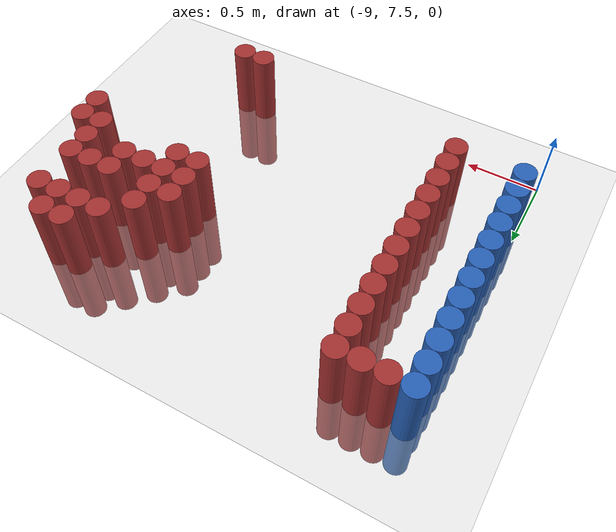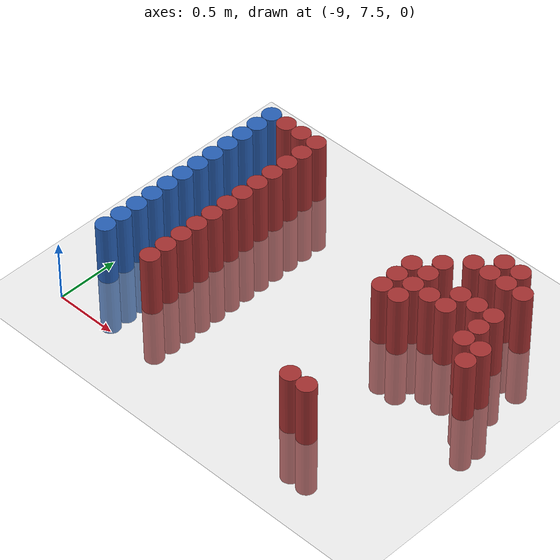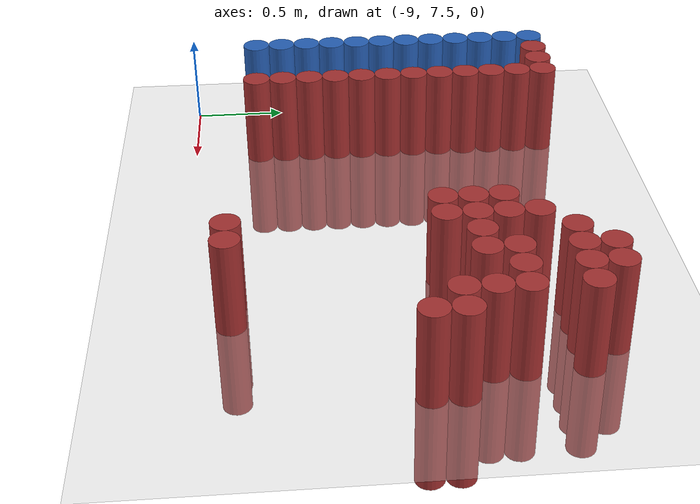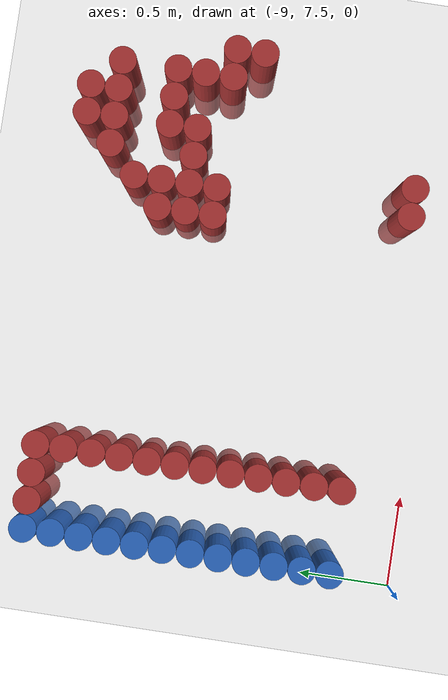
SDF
<sdf version="1.6">
 <world name="default">
  <model name="ground_plane">
   <static>1</static>
   <link name="link">
    <collision name="collision">
     <geometry><plane><normal>0 0 1</normal><size>100 100</size></plane></geometry>
     <surface><friction><ode><mu>100</mu><mu2>50</mu2></ode></friction></surface>
    </collision>
    <visual name="visual">
     <cast_shadows>0</cast_shadows>
     <geometry><plane><normal>0 0 1</normal><size>100 100</size></plane></geometry>
     <material>
      <script><uri>file://media/materials/scripts/gazebo.material</uri><name>Gazebo/Grey</name></script>
     </material>
    </visual>
   </link>
  </model>
  <model name="unit_cylinder_143">
   <static>1</static>
   <pose>-8.925000 7.875000 0.000000 0.000000 0.000000 0.000000</pose>
   <link name="link">
    <inertial>
     <mass>1</mass>
     <inertia><ixx>0.145833</ixx><ixy>0</ixy><ixz>0</ixz><iyy>0.145833</iyy><iyz>0</iyz><izz>0.125</izz></inertia>
    </inertial>
    <collision name="collision">
     <geometry><cylinder><radius>0.075000</radius><length>1</length></cylinder></geometry>
    </collision>
    <visual name="visual">
     <geometry><cylinder><radius>0.075000</radius><length>1</length></cylinder></geometry>
     <material>
      <ambient>0.152000 0.379000 0.720000 1</ambient>
      <diffuse>0.152000 0.379000 0.720000 1</diffuse>
     </material>
     <material>
      <script><name>Gazebo/Grey</name><uri>file://media/materials/scripts/gazebo.material</uri></script>
     </material>
    </visual>
   </link>
  </model>
  <model name="unit_cylinder_144">
   <static>1</static>
   <pose>-8.925000 8.025000 0.000000 0.000000 0.000000 0.000000</pose>
   <link name="link">
    <inertial>
     <mass>1</mass>
     <inertia><ixx>0.145833</ixx><ixy>0</ixy><ixz>0</ixz><iyy>0.145833</iyy><iyz>0</iyz><izz>0.125</izz></inertia>
    </inertial>
    <collision name="collision">
     <geometry><cylinder><radius>0.075000</radius><length>1</length></cylinder></geometry>
    </collision>
    <visual name="visual">
     <geometry><cylinder><radius>0.075000</radius><length>1</length></cylinder></geometry>
     <material>
      <ambient>0.152000 0.379000 0.720000 1</ambient>
      <diffuse>0.152000 0.379000 0.720000 1</diffuse>
     </material>
     <material>
      <script><name>Gazebo/Grey</name><uri>file://media/materials/scripts/gazebo.material</uri></script>
     </material>
    </visual>
   </link>
  </model>
  <model name="unit_cylinder_145">
   <static>1</static>
   <pose>-8.925000 8.175000 0.000000 0.000000 0.000000 0.000000</pose>
   <link name="link">
    <inertial>
     <mass>1</mass>
     <inertia><ixx>0.145833</ixx><ixy>0</ixy><ixz>0</ixz><iyy>0.145833</iyy><iyz>0</iyz><izz>0.125</izz></inertia>
    </inertial>
    <collision name="collision">
     <geometry><cylinder><radius>0.075000</radius><length>1</length></cylinder></geometry>
    </collision>
    <visual name="visual">
     <geometry><cylinder><radius>0.075000</radius><length>1</length></cylinder></geometry>
     <material>
      <ambient>0.152000 0.379000 0.720000 1</ambient>
      <diffuse>0.152000 0.379000 0.720000 1</diffuse>
     </material>
     <material>
      <script><name>Gazebo/Grey</name><uri>file://media/materials/scripts/gazebo.material</uri></script>
     </material>
    </visual>
   </link>
  </model>
  <model name="unit_cylinder_146">
   <static>1</static>
   <pose>-8.925000 8.325000 0.000000 0.000000 0.000000 0.000000</pose>
   <link name="link">
    <inertial>
     <mass>1</mass>
     <inertia><ixx>0.145833</ixx><ixy>0</ixy><ixz>0</ixz><iyy>0.145833</iyy><iyz>0</iyz><izz>0.125</izz></inertia>
    </inertial>
    <collision name="collision">
     <geometry><cylinder><radius>0.075000</radius><length>1</length></cylinder></geometry>
    </collision>
    <visual name="visual">
     <geometry><cylinder><radius>0.075000</radius><length>1</length></cylinder></geometry>
     <material>
      <ambient>0.152000 0.379000 0.720000 1</ambient>
      <diffuse>0.152000 0.379000 0.720000 1</diffuse>
     </material>
     <material>
      <script><name>Gazebo/Grey</name><uri>file://media/materials/scripts/gazebo.material</uri></script>
     </material>
    </visual>
   </link>
  </model>
  <model name="unit_cylinder_147">
   <static>1</static>
   <pose>-8.925000 8.475000 0.000000 0.000000 0.000000 0.000000</pose>
   <link name="link">
    <inertial>
     <mass>1</mass>
     <inertia><ixx>0.145833</ixx><ixy>0</ixy><ixz>0</ixz><iyy>0.145833</iyy><iyz>0</iyz><izz>0.125</izz></inertia>
    </inertial>
    <collision name="collision">
     <geometry><cylinder><radius>0.075000</radius><length>1</length></cylinder></geometry>
    </collision>
    <visual name="visual">
     <geometry><cylinder><radius>0.075000</radius><length>1</length></cylinder></geometry>
     <material>
      <ambient>0.152000 0.379000 0.720000 1</ambient>
      <diffuse>0.152000 0.379000 0.720000 1</diffuse>
     </material>
     <material>
      <script><name>Gazebo/Grey</name><uri>file://media/materials/scripts/gazebo.material</uri></script>
     </material>
    </visual>
   </link>
  </model>
  <model name="unit_cylinder_148">
   <static>1</static>
   <pose>-8.925000 8.625000 0.000000 0.000000 0.000000 0.000000</pose>
   <link name="link">
    <inertial>
     <mass>1</mass>
     <inertia><ixx>0.145833</ixx><ixy>0</ixy><ixz>0</ixz><iyy>0.145833</iyy><iyz>0</iyz><izz>0.125</izz></inertia>
    </inertial>
    <collision name="collision">
     <geometry><cylinder><radius>0.075000</radius><length>1</length></cylinder></geometry>
    </collision>
    <visual name="visual">
     <geometry><cylinder><radius>0.075000</radius><length>1</length></cylinder></geometry>
     <material>
      <ambient>0.152000 0.379000 0.720000 1</ambient>
      <diffuse>0.152000 0.379000 0.720000 1</diffuse>
     </material>
     <material>
      <script><name>Gazebo/Grey</name><uri>file://media/materials/scripts/gazebo.material</uri></script>
     </material>
    </visual>
   </link>
  </model>
  <model name="unit_cylinder_149">
   <static>1</static>
   <pose>-8.925000 8.775000 0.000000 0.000000 0.000000 0.000000</pose>
   <link name="link">
    <inertial>
     <mass>1</mass>
     <inertia><ixx>0.145833</ixx><ixy>0</ixy><ixz>0</ixz><iyy>0.145833</iyy><iyz>0</iyz><izz>0.125</izz></inertia>
    </inertial>
    <collision name="collision">
     <geometry><cylinder><radius>0.075000</radius><length>1</length></cylinder></geometry>
    </collision>
    <visual name="visual">
     <geometry><cylinder><radius>0.075000</radius><length>1</length></cylinder></geometry>
     <material>
      <ambient>0.152000 0.379000 0.720000 1</ambient>
      <diffuse>0.152000 0.379000 0.720000 1</diffuse>
     </material>
     <material>
      <script><name>Gazebo/Grey</name><uri>file://media/materials/scripts/gazebo.material</uri></script>
     </material>
    </visual>
   </link>
  </model>
  <model name="unit_cylinder_150">
   <static>1</static>
   <pose>-8.925000 8.925000 0.000000 0.000000 0.000000 0.000000</pose>
   <link name="link">
    <inertial>
     <mass>1</mass>
     <inertia><ixx>0.145833</ixx><ixy>0</ixy><ixz>0</ixz><iyy>0.145833</iyy><iyz>0</iyz><izz>0.125</izz></inertia>
    </inertial>
    <collision name="collision">
     <geometry><cylinder><radius>0.075000</radius><length>1</length></cylinder></geometry>
    </collision>
    <visual name="visual">
     <geometry><cylinder><radius>0.075000</radius><length>1</length></cylinder></geometry>
     <material>
      <ambient>0.152000 0.379000 0.720000 1</ambient>
      <diffuse>0.152000 0.379000 0.720000 1</diffuse>
     </material>
     <material>
      <script><name>Gazebo/Grey</name><uri>file://media/materials/scripts/gazebo.material</uri></script>
     </material>
    </visual>
   </link>
  </model>
  <model name="unit_cylinder_151">
   <static>1</static>
   <pose>-8.925000 9.075000 0.000000 0.000000 0.000000 0.000000</pose>
   <link name="link">
    <inertial>
     <mass>1</mass>
     <inertia><ixx>0.145833</ixx><ixy>0</ixy><ixz>0</ixz><iyy>0.145833</iyy><iyz>0</iyz><izz>0.125</izz></inertia>
    </inertial>
    <collision name="collision">
     <geometry><cylinder><radius>0.075000</radius><length>1</length></cylinder></geometry>
    </collision>
    <visual name="visual">
     <geometry><cylinder><radius>0.075000</radius><length>1</length></cylinder></geometry>
     <material>
      <ambient>0.152000 0.379000 0.720000 1</ambient>
      <diffuse>0.152000 0.379000 0.720000 1</diffuse>
     </material>
     <material>
      <script><name>Gazebo/Grey</name><uri>file://media/materials/scripts/gazebo.material</uri></script>
     </material>
    </visual>
   </link>
  </model>
  <model name="unit_cylinder_152">
   <static>1</static>
   <pose>-8.925000 9.225000 0.000000 0.000000 0.000000 0.000000</pose>
   <link name="link">
    <inertial>
     <mass>1</mass>
     <inertia><ixx>0.145833</ixx><ixy>0</ixy><ixz>0</ixz><iyy>0.145833</iyy><iyz>0</iyz><izz>0.125</izz></inertia>
    </inertial>
    <collision name="collision">
     <geometry><cylinder><radius>0.075000</radius><length>1</length></cylinder></geometry>
    </collision>
    <visual name="visual">
     <geometry><cylinder><radius>0.075000</radius><length>1</length></cylinder></geometry>
     <material>
      <ambient>0.152000 0.379000 0.720000 1</ambient>
      <diffuse>0.152000 0.379000 0.720000 1</diffuse>
     </material>
     <material>
      <script><name>Gazebo/Grey</name><uri>file://media/materials/scripts/gazebo.material</uri></script>
     </material>
    </visual>
   </link>
  </model>
  <model name="unit_cylinder_153">
   <static>1</static>
   <pose>-8.925000 9.375000 0.000000 0.000000 0.000000 0.000000</pose>
   <link name="link">
    <inertial>
     <mass>1</mass>
     <inertia><ixx>0.145833</ixx><ixy>0</ixy><ixz>0</ixz><iyy>0.145833</iyy><iyz>0</iyz><izz>0.125</izz></inertia>
    </inertial>
    <collision name="collision">
     <geometry><cylinder><radius>0.075000</radius><length>1</length></cylinder></geometry>
    </collision>
    <visual name="visual">
     <geometry><cylinder><radius>0.075000</radius><length>1</length></cylinder></geometry>
     <material>
      <ambient>0.152000 0.379000 0.720000 1</ambient>
      <diffuse>0.152000 0.379000 0.720000 1</diffuse>
     </material>
     <material>
      <script><name>Gazebo/Grey</name><uri>file://media/materials/scripts/gazebo.material</uri></script>
     </material>
    </visual>
   </link>
  </model>
  <model name="unit_cylinder_154">
   <static>1</static>
   <pose>-8.925000 9.525000 0.000000 0.000000 0.000000 0.000000</pose>
   <link name="link">
    <inertial>
     <mass>1</mass>
     <inertia><ixx>0.145833</ixx><ixy>0</ixy><ixz>0</ixz><iyy>0.145833</iyy><iyz>0</iyz><izz>0.125</izz></inertia>
    </inertial>
    <collision name="collision">
     <geometry><cylinder><radius>0.075000</radius><length>1</length></cylinder></geometry>
    </collision>
    <visual name="visual">
     <geometry><cylinder><radius>0.075000</radius><length>1</length></cylinder></geometry>
     <material>
      <ambient>0.152000 0.379000 0.720000 1</ambient>
      <diffuse>0.152000 0.379000 0.720000 1</diffuse>
     </material>
     <material>
      <script><name>Gazebo/Grey</name><uri>file://media/materials/scripts/gazebo.material</uri></script>
     </material>
    </visual>
   </link>
  </model>
  <model name="unit_cylinder_156">
   <static>1</static>
   <pose>-8.775000 9.525000 0.000000 0.000000 0.000000 0.000000</pose>
   <link name="link">
    <inertial>
     <mass>1</mass>
     <inertia><ixx>0.145833</ixx><ixy>0</ixy><ixz>0</ixz><iyy>0.145833</iyy><iyz>0</iyz><izz>0.125</izz></inertia>
    </inertial>
    <collision name="collision">
     <geometry><cylinder><radius>0.075000</radius><length>1</length></cylinder></geometry>
    </collision>
    <visual name="visual">
     <geometry><cylinder><radius>0.075000</radius><length>1</length></cylinder></geometry>
     <material>
      <ambient>0.648000 0.192000 0.192000 1</ambient>
      <diffuse>0.648000 0.192000 0.192000 1</diffuse>
     </material>
     <material>
      <script><name>Gazebo/Grey</name><uri>file://media/materials/scripts/gazebo.material</uri></script>
     </material>
    </visual>
   </link>
  </model>
  <model name="unit_cylinder_158">
   <static>1</static>
   <pose>-8.625000 9.525000 0.000000 0.000000 0.000000 0.000000</pose>
   <link name="link">
    <inertial>
     <mass>1</mass>
     <inertia><ixx>0.145833</ixx><ixy>0</ixy><ixz>0</ixz><iyy>0.145833</iyy><iyz>0</iyz><izz>0.125</izz></inertia>
    </inertial>
    <collision name="collision">
     <geometry><cylinder><radius>0.075000</radius><length>1</length></cylinder></geometry>
    </collision>
    <visual name="visual">
     <geometry><cylinder><radius>0.075000</radius><length>1</length></cylinder></geometry>
     <material>
      <ambient>0.648000 0.192000 0.192000 1</ambient>
      <diffuse>0.648000 0.192000 0.192000 1</diffuse>
     </material>
     <material>
      <script><name>Gazebo/Grey</name><uri>file://media/materials/scripts/gazebo.material</uri></script>
     </material>
    </visual>
   </link>
  </model>
  <model name="unit_cylinder_163">
   <static>1</static>
   <pose>-8.475000 7.875000 0.000000 0.000000 0.000000 0.000000</pose>
   <link name="link">
    <inertial>
     <mass>1</mass>
     <inertia><ixx>0.145833</ixx><ixy>0</ixy><ixz>0</ixz><iyy>0.145833</iyy><iyz>0</iyz><izz>0.125</izz></inertia>
    </inertial>
    <collision name="collision">
     <geometry><cylinder><radius>0.075000</radius><length>1</length></cylinder></geometry>
    </collision>
    <visual name="visual">
     <geometry><cylinder><radius>0.075000</radius><length>1</length></cylinder></geometry>
     <material>
      <ambient>0.648000 0.192000 0.192000 1</ambient>
      <diffuse>0.648000 0.192000 0.192000 1</diffuse>
     </material>
     <material>
      <script><name>Gazebo/Grey</name><uri>file://media/materials/scripts/gazebo.material</uri></script>
     </material>
    </visual>
   </link>
  </model>
  <model name="unit_cylinder_164">
   <static>1</static>
   <pose>-8.475000 8.025000 0.000000 0.000000 0.000000 0.000000</pose>
   <link name="link">
    <inertial>
     <mass>1</mass>
     <inertia><ixx>0.145833</ixx><ixy>0</ixy><ixz>0</ixz><iyy>0.145833</iyy><iyz>0</iyz><izz>0.125</izz></inertia>
    </inertial>
    <collision name="collision">
     <geometry><cylinder><radius>0.075000</radius><length>1</length></cylinder></geometry>
    </collision>
    <visual name="visual">
     <geometry><cylinder><radius>0.075000</radius><length>1</length></cylinder></geometry>
     <material>
      <ambient>0.648000 0.192000 0.192000 1</ambient>
      <diffuse>0.648000 0.192000 0.192000 1</diffuse>
     </material>
     <material>
      <script><name>Gazebo/Grey</name><uri>file://media/materials/scripts/gazebo.material</uri></script>
     </material>
    </visual>
   </link>
  </model>
  <model name="unit_cylinder_165">
   <static>1</static>
   <pose>-8.475000 8.175000 0.000000 0.000000 0.000000 0.000000</pose>
   <link name="link">
    <inertial>
     <mass>1</mass>
     <inertia><ixx>0.145833</ixx><ixy>0</ixy><ixz>0</ixz><iyy>0.145833</iyy><iyz>0</iyz><izz>0.125</izz></inertia>
    </inertial>
    <collision name="collision">
     <geometry><cylinder><radius>0.075000</radius><length>1</length></cylinder></geometry>
    </collision>
    <visual name="visual">
     <geometry><cylinder><radius>0.075000</radius><length>1</length></cylinder></geometry>
     <material>
      <ambient>0.648000 0.192000 0.192000 1</ambient>
      <diffuse>0.648000 0.192000 0.192000 1</diffuse>
     </material>
     <material>
      <script><name>Gazebo/Grey</name><uri>file://media/materials/scripts/gazebo.material</uri></script>
     </material>
    </visual>
   </link>
  </model>
  <model name="unit_cylinder_166">
   <static>1</static>
   <pose>-8.475000 8.325000 0.000000 0.000000 0.000000 0.000000</pose>
   <link name="link">
    <inertial>
     <mass>1</mass>
     <inertia><ixx>0.145833</ixx><ixy>0</ixy><ixz>0</ixz><iyy>0.145833</iyy><iyz>0</iyz><izz>0.125</izz></inertia>
    </inertial>
    <collision name="collision">
     <geometry><cylinder><radius>0.075000</radius><length>1</length></cylinder></geometry>
    </collision>
    <visual name="visual">
     <geometry><cylinder><radius>0.075000</radius><length>1</length></cylinder></geometry>
     <material>
      <ambient>0.648000 0.192000 0.192000 1</ambient>
      <diffuse>0.648000 0.192000 0.192000 1</diffuse>
     </material>
     <material>
      <script><name>Gazebo/Grey</name><uri>file://media/materials/scripts/gazebo.material</uri></script>
     </material>
    </visual>
   </link>
  </model>
  <model name="unit_cylinder_167">
   <static>1</static>
   <pose>-8.475000 8.475000 0.000000 0.000000 0.000000 0.000000</pose>
   <link name="link">
    <inertial>
     <mass>1</mass>
     <inertia><ixx>0.145833</ixx><ixy>0</ixy><ixz>0</ixz><iyy>0.145833</iyy><iyz>0</iyz><izz>0.125</izz></inertia>
    </inertial>
    <collision name="collision">
     <geometry><cylinder><radius>0.075000</radius><length>1</length></cylinder></geometry>
    </collision>
    <visual name="visual">
     <geometry><cylinder><radius>0.075000</radius><length>1</length></cylinder></geometry>
     <material>
      <ambient>0.648000 0.192000 0.192000 1</ambient>
      <diffuse>0.648000 0.192000 0.192000 1</diffuse>
     </material>
     <material>
      <script><name>Gazebo/Grey</name><uri>file://media/materials/scripts/gazebo.material</uri></script>
     </material>
    </visual>
   </link>
  </model>
  <model name="unit_cylinder_168">
   <static>1</static>
   <pose>-8.475000 8.625000 0.000000 0.000000 0.000000 0.000000</pose>
   <link name="link">
    <inertial>
     <mass>1</mass>
     <inertia><ixx>0.145833</ixx><ixy>0</ixy><ixz>0</ixz><iyy>0.145833</iyy><iyz>0</iyz><izz>0.125</izz></inertia>
    </inertial>
    <collision name="collision">
     <geometry><cylinder><radius>0.075000</radius><length>1</length></cylinder></geometry>
    </collision>
    <visual name="visual">
     <geometry><cylinder><radius>0.075000</radius><length>1</length></cylinder></geometry>
     <material>
      <ambient>0.648000 0.192000 0.192000 1</ambient>
      <diffuse>0.648000 0.192000 0.192000 1</diffuse>
     </material>
     <material>
      <script><name>Gazebo/Grey</name><uri>file://media/materials/scripts/gazebo.material</uri></script>
     </material>
    </visual>
   </link>
  </model>
  <model name="unit_cylinder_169">
   <static>1</static>
   <pose>-8.475000 8.775000 0.000000 0.000000 0.000000 0.000000</pose>
   <link name="link">
    <inertial>
     <mass>1</mass>
     <inertia><ixx>0.145833</ixx><ixy>0</ixy><ixz>0</ixz><iyy>0.145833</iyy><iyz>0</iyz><izz>0.125</izz></inertia>
    </inertial>
    <collision name="collision">
     <geometry><cylinder><radius>0.075000</radius><length>1</length></cylinder></geometry>
    </collision>
    <visual name="visual">
     <geometry><cylinder><radius>0.075000</radius><length>1</length></cylinder></geometry>
     <material>
      <ambient>0.648000 0.192000 0.192000 1</ambient>
      <diffuse>0.648000 0.192000 0.192000 1</diffuse>
     </material>
     <material>
      <script><name>Gazebo/Grey</name><uri>file://media/materials/scripts/gazebo.material</uri></script>
     </material>
    </visual>
   </link>
  </model>
  <model name="unit_cylinder_170">
   <static>1</static>
   <pose>-8.475000 8.925000 0.000000 0.000000 0.000000 0.000000</pose>
   <link name="link">
    <inertial>
     <mass>1</mass>
     <inertia><ixx>0.145833</ixx><ixy>0</ixy><ixz>0</ixz><iyy>0.145833</iyy><iyz>0</iyz><izz>0.125</izz></inertia>
    </inertial>
    <collision name="collision">
     <geometry><cylinder><radius>0.075000</radius><length>1</length></cylinder></geometry>
    </collision>
    <visual name="visual">
     <geometry><cylinder><radius>0.075000</radius><length>1</length></cylinder></geometry>
     <material>
      <ambient>0.648000 0.192000 0.192000 1</ambient>
      <diffuse>0.648000 0.192000 0.192000 1</diffuse>
     </material>
     <material>
      <script><name>Gazebo/Grey</name><uri>file://media/materials/scripts/gazebo.material</uri></script>
     </material>
    </visual>
   </link>
  </model>
  <model name="unit_cylinder_171">
   <static>1</static>
   <pose>-8.475000 9.075000 0.000000 0.000000 0.000000 0.000000</pose>
   <link name="link">
    <inertial>
     <mass>1</mass>
     <inertia><ixx>0.145833</ixx><ixy>0</ixy><ixz>0</ixz><iyy>0.145833</iyy><iyz>0</iyz><izz>0.125</izz></inertia>
    </inertial>
    <collision name="collision">
     <geometry><cylinder><radius>0.075000</radius><length>1</length></cylinder></geometry>
    </collision>
    <visual name="visual">
     <geometry><cylinder><radius>0.075000</radius><length>1</length></cylinder></geometry>
     <material>
      <ambient>0.648000 0.192000 0.192000 1</ambient>
      <diffuse>0.648000 0.192000 0.192000 1</diffuse>
     </material>
     <material>
      <script><name>Gazebo/Grey</name><uri>file://media/materials/scripts/gazebo.material</uri></script>
     </material>
    </visual>
   </link>
  </model>
  <model name="unit_cylinder_172">
   <static>1</static>
   <pose>-8.475000 9.225000 0.000000 0.000000 0.000000 0.000000</pose>
   <link name="link">
    <inertial>
     <mass>1</mass>
     <inertia><ixx>0.145833</ixx><ixy>0</ixy><ixz>0</ixz><iyy>0.145833</iyy><iyz>0</iyz><izz>0.125</izz></inertia>
    </inertial>
    <collision name="collision">
     <geometry><cylinder><radius>0.075000</radius><length>1</length></cylinder></geometry>
    </collision>
    <visual name="visual">
     <geometry><cylinder><radius>0.075000</radius><length>1</length></cylinder></geometry>
     <material>
      <ambient>0.648000 0.192000 0.192000 1</ambient>
      <diffuse>0.648000 0.192000 0.192000 1</diffuse>
     </material>
     <material>
      <script><name>Gazebo/Grey</name><uri>file://media/materials/scripts/gazebo.material</uri></script>
     </material>
    </visual>
   </link>
  </model>
  <model name="unit_cylinder_173">
   <static>1</static>
   <pose>-8.475000 9.375000 0.000000 0.000000 0.000000 0.000000</pose>
   <link name="link">
    <inertial>
     <mass>1</mass>
     <inertia><ixx>0.145833</ixx><ixy>0</ixy><ixz>0</ixz><iyy>0.145833</iyy><iyz>0</iyz><izz>0.125</izz></inertia>
    </inertial>
    <collision name="collision">
     <geometry><cylinder><radius>0.075000</radius><length>1</length></cylinder></geometry>
    </collision>
    <visual name="visual">
     <geometry><cylinder><radius>0.075000</radius><length>1</length></cylinder></geometry>
     <material>
      <ambient>0.648000 0.192000 0.192000 1</ambient>
      <diffuse>0.648000 0.192000 0.192000 1</diffuse>
     </material>
     <material>
      <script><name>Gazebo/Grey</name><uri>file://media/materials/scripts/gazebo.material</uri></script>
     </material>
    </visual>
   </link>
  </model>
  <model name="unit_cylinder_174">
   <static>1</static>
   <pose>-8.475000 9.525000 0.000000 0.000000 0.000000 0.000000</pose>
   <link name="link">
    <inertial>
     <mass>1</mass>
     <inertia><ixx>0.145833</ixx><ixy>0</ixy><ixz>0</ixz><iyy>0.145833</iyy><iyz>0</iyz><izz>0.125</izz></inertia>
    </inertial>
    <collision name="collision">
     <geometry><cylinder><radius>0.075000</radius><length>1</length></cylinder></geometry>
    </collision>
    <visual name="visual">
     <geometry><cylinder><radius>0.075000</radius><length>1</length></cylinder></geometry>
     <material>
      <ambient>0.648000 0.192000 0.192000 1</ambient>
      <diffuse>0.648000 0.192000 0.192000 1</diffuse>
     </material>
     <material>
      <script><name>Gazebo/Grey</name><uri>file://media/materials/scripts/gazebo.material</uri></script>
     </material>
    </visual>
   </link>
  </model>
  <model name="unit_cylinder_204">
   <static>1</static>
   <pose>-7.125000 8.775000 0.000000 0.000000 0.000000 0.000000</pose>
   <link name="link">
    <inertial>
     <mass>1</mass>
     <inertia><ixx>0.145833</ixx><ixy>0</ixy><ixz>0</ixz><iyy>0.145833</iyy><iyz>0</iyz><izz>0.125</izz></inertia>
    </inertial>
    <collision name="collision">
     <geometry><cylinder><radius>0.075000</radius><length>1</length></cylinder></geometry>
    </collision>
    <visual name="visual">
     <geometry><cylinder><radius>0.075000</radius><length>1</length></cylinder></geometry>
     <material>
      <ambient>0.648000 0.192000 0.192000 1</ambient>
      <diffuse>0.648000 0.192000 0.192000 1</diffuse>
     </material>
     <material>
      <script><name>Gazebo/Grey</name><uri>file://media/materials/scripts/gazebo.material</uri></script>
     </material>
    </visual>
   </link>
  </model>
  <model name="unit_cylinder_205">
   <static>1</static>
   <pose>-7.125000 8.925000 0.000000 0.000000 0.000000 0.000000</pose>
   <link name="link">
    <inertial>
     <mass>1</mass>
     <inertia><ixx>0.145833</ixx><ixy>0</ixy><ixz>0</ixz><iyy>0.145833</iyy><iyz>0</iyz><izz>0.125</izz></inertia>
    </inertial>
    <collision name="collision">
     <geometry><cylinder><radius>0.075000</radius><length>1</length></cylinder></geometry>
    </collision>
    <visual name="visual">
     <geometry><cylinder><radius>0.075000</radius><length>1</length></cylinder></geometry>
     <material>
      <ambient>0.648000 0.192000 0.192000 1</ambient>
      <diffuse>0.648000 0.192000 0.192000 1</diffuse>
     </material>
     <material>
      <script><name>Gazebo/Grey</name><uri>file://media/materials/scripts/gazebo.material</uri></script>
     </material>
    </visual>
   </link>
  </model>
  <model name="unit_cylinder_206">
   <static>1</static>
   <pose>-7.125000 9.075000 0.000000 0.000000 0.000000 0.000000</pose>
   <link name="link">
    <inertial>
     <mass>1</mass>
     <inertia><ixx>0.145833</ixx><ixy>0</ixy><ixz>0</ixz><iyy>0.145833</iyy><iyz>0</iyz><izz>0.125</izz></inertia>
    </inertial>
    <collision name="collision">
     <geometry><cylinder><radius>0.075000</radius><length>1</length></cylinder></geometry>
    </collision>
    <visual name="visual">
     <geometry><cylinder><radius>0.075000</radius><length>1</length></cylinder></geometry>
     <material>
      <ambient>0.648000 0.192000 0.192000 1</ambient>
      <diffuse>0.648000 0.192000 0.192000 1</diffuse>
     </material>
     <material>
      <script><name>Gazebo/Grey</name><uri>file://media/materials/scripts/gazebo.material</uri></script>
     </material>
    </visual>
   </link>
  </model>
  <model name="unit_cylinder_210">
   <static>1</static>
   <pose>-6.975000 7.725000 0.000000 0.000000 0.000000 0.000000</pose>
   <link name="link">
    <inertial>
     <mass>1</mass>
     <inertia><ixx>0.145833</ixx><ixy>0</ixy><ixz>0</ixz><iyy>0.145833</iyy><iyz>0</iyz><izz>0.125</izz></inertia>
    </inertial>
    <collision name="collision">
     <geometry><cylinder><radius>0.075000</radius><length>1</length></cylinder></geometry>
    </collision>
    <visual name="visual">
     <geometry><cylinder><radius>0.075000</radius><length>1</length></cylinder></geometry>
     <material>
      <ambient>0.648000 0.192000 0.192000 1</ambient>
      <diffuse>0.648000 0.192000 0.192000 1</diffuse>
     </material>
     <material>
      <script><name>Gazebo/Grey</name><uri>file://media/materials/scripts/gazebo.material</uri></script>
     </material>
    </visual>
   </link>
  </model>
  <model name="unit_cylinder_211">
   <static>1</static>
   <pose>-6.975000 8.775000 0.000000 0.000000 0.000000 0.000000</pose>
   <link name="link">
    <inertial>
     <mass>1</mass>
     <inertia><ixx>0.145833</ixx><ixy>0</ixy><ixz>0</ixz><iyy>0.145833</iyy><iyz>0</iyz><izz>0.125</izz></inertia>
    </inertial>
    <collision name="collision">
     <geometry><cylinder><radius>0.075000</radius><length>1</length></cylinder></geometry>
    </collision>
    <visual name="visual">
     <geometry><cylinder><radius>0.075000</radius><length>1</length></cylinder></geometry>
     <material>
      <ambient>0.648000 0.192000 0.192000 1</ambient>
      <diffuse>0.648000 0.192000 0.192000 1</diffuse>
     </material>
     <material>
      <script><name>Gazebo/Grey</name><uri>file://media/materials/scripts/gazebo.material</uri></script>
     </material>
    </visual>
   </link>
  </model>
  <model name="unit_cylinder_212">
   <static>1</static>
   <pose>-6.975000 8.925000 0.000000 0.000000 0.000000 0.000000</pose>
   <link name="link">
    <inertial>
     <mass>1</mass>
     <inertia><ixx>0.145833</ixx><ixy>0</ixy><ixz>0</ixz><iyy>0.145833</iyy><iyz>0</iyz><izz>0.125</izz></inertia>
    </inertial>
    <collision name="collision">
     <geometry><cylinder><radius>0.075000</radius><length>1</length></cylinder></geometry>
    </collision>
    <visual name="visual">
     <geometry><cylinder><radius>0.075000</radius><length>1</length></cylinder></geometry>
     <material>
      <ambient>0.648000 0.192000 0.192000 1</ambient>
      <diffuse>0.648000 0.192000 0.192000 1</diffuse>
     </material>
     <material>
      <script><name>Gazebo/Grey</name><uri>file://media/materials/scripts/gazebo.material</uri></script>
     </material>
    </visual>
   </link>
  </model>
  <model name="unit_cylinder_213">
   <static>1</static>
   <pose>-6.975000 9.075000 0.000000 0.000000 0.000000 0.000000</pose>
   <link name="link">
    <inertial>
     <mass>1</mass>
     <inertia><ixx>0.145833</ixx><ixy>0</ixy><ixz>0</ixz><iyy>0.145833</iyy><iyz>0</iyz><izz>0.125</izz></inertia>
    </inertial>
    <collision name="collision">
     <geometry><cylinder><radius>0.075000</radius><length>1</length></cylinder></geometry>
    </collision>
    <visual name="visual">
     <geometry><cylinder><radius>0.075000</radius><length>1</length></cylinder></geometry>
     <material>
      <ambient>0.648000 0.192000 0.192000 1</ambient>
      <diffuse>0.648000 0.192000 0.192000 1</diffuse>
     </material>
     <material>
      <script><name>Gazebo/Grey</name><uri>file://media/materials/scripts/gazebo.material</uri></script>
     </material>
    </visual>
   </link>
  </model>
  <model name="unit_cylinder_214">
   <static>1</static>
   <pose>-6.975000 9.225000 0.000000 0.000000 0.000000 0.000000</pose>
   <link name="link">
    <inertial>
     <mass>1</mass>
     <inertia><ixx>0.145833</ixx><ixy>0</ixy><ixz>0</ixz><iyy>0.145833</iyy><iyz>0</iyz><izz>0.125</izz></inertia>
    </inertial>
    <collision name="collision">
     <geometry><cylinder><radius>0.075000</radius><length>1</length></cylinder></geometry>
    </collision>
    <visual name="visual">
     <geometry><cylinder><radius>0.075000</radius><length>1</length></cylinder></geometry>
     <material>
      <ambient>0.648000 0.192000 0.192000 1</ambient>
      <diffuse>0.648000 0.192000 0.192000 1</diffuse>
     </material>
     <material>
      <script><name>Gazebo/Grey</name><uri>file://media/materials/scripts/gazebo.material</uri></script>
     </material>
    </visual>
   </link>
  </model>
  <model name="unit_cylinder_220">
   <static>1</static>
   <pose>-6.825000 7.725000 0.000000 0.000000 0.000000 0.000000</pose>
   <link name="link">
    <inertial>
     <mass>1</mass>
     <inertia><ixx>0.145833</ixx><ixy>0</ixy><ixz>0</ixz><iyy>0.145833</iyy><iyz>0</iyz><izz>0.125</izz></inertia>
    </inertial>
    <collision name="collision">
     <geometry><cylinder><radius>0.075000</radius><length>1</length></cylinder></geometry>
    </collision>
    <visual name="visual">
     <geometry><cylinder><radius>0.075000</radius><length>1</length></cylinder></geometry>
     <material>
      <ambient>0.648000 0.192000 0.192000 1</ambient>
      <diffuse>0.648000 0.192000 0.192000 1</diffuse>
     </material>
     <material>
      <script><name>Gazebo/Grey</name><uri>file://media/materials/scripts/gazebo.material</uri></script>
     </material>
    </visual>
   </link>
  </model>
  <model name="unit_cylinder_221">
   <static>1</static>
   <pose>-6.825000 8.925000 0.000000 0.000000 0.000000 0.000000</pose>
   <link name="link">
    <inertial>
     <mass>1</mass>
     <inertia><ixx>0.145833</ixx><ixy>0</ixy><ixz>0</ixz><iyy>0.145833</iyy><iyz>0</iyz><izz>0.125</izz></inertia>
    </inertial>
    <collision name="collision">
     <geometry><cylinder><radius>0.075000</radius><length>1</length></cylinder></geometry>
    </collision>
    <visual name="visual">
     <geometry><cylinder><radius>0.075000</radius><length>1</length></cylinder></geometry>
     <material>
      <ambient>0.648000 0.192000 0.192000 1</ambient>
      <diffuse>0.648000 0.192000 0.192000 1</diffuse>
     </material>
     <material>
      <script><name>Gazebo/Grey</name><uri>file://media/materials/scripts/gazebo.material</uri></script>
     </material>
    </visual>
   </link>
  </model>
  <model name="unit_cylinder_222">
   <static>1</static>
   <pose>-6.825000 9.375000 0.000000 0.000000 0.000000 0.000000</pose>
   <link name="link">
    <inertial>
     <mass>1</mass>
     <inertia><ixx>0.145833</ixx><ixy>0</ixy><ixz>0</ixz><iyy>0.145833</iyy><iyz>0</iyz><izz>0.125</izz></inertia>
    </inertial>
    <collision name="collision">
     <geometry><cylinder><radius>0.075000</radius><length>1</length></cylinder></geometry>
    </collision>
    <visual name="visual">
     <geometry><cylinder><radius>0.075000</radius><length>1</length></cylinder></geometry>
     <material>
      <ambient>0.648000 0.192000 0.192000 1</ambient>
      <diffuse>0.648000 0.192000 0.192000 1</diffuse>
     </material>
     <material>
      <script><name>Gazebo/Grey</name><uri>file://media/materials/scripts/gazebo.material</uri></script>
     </material>
    </visual>
   </link>
  </model>
  <model name="unit_cylinder_227">
   <static>1</static>
   <pose>-6.675000 8.925000 0.000000 0.000000 0.000000 0.000000</pose>
   <link name="link">
    <inertial>
     <mass>1</mass>
     <inertia><ixx>0.145833</ixx><ixy>0</ixy><ixz>0</ixz><iyy>0.145833</iyy><iyz>0</iyz><izz>0.125</izz></inertia>
    </inertial>
    <collision name="collision">
     <geometry><cylinder><radius>0.075000</radius><length>1</length></cylinder></geometry>
    </collision>
    <visual name="visual">
     <geometry><cylinder><radius>0.075000</radius><length>1</length></cylinder></geometry>
     <material>
      <ambient>0.648000 0.192000 0.192000 1</ambient>
      <diffuse>0.648000 0.192000 0.192000 1</diffuse>
     </material>
     <material>
      <script><name>Gazebo/Grey</name><uri>file://media/materials/scripts/gazebo.material</uri></script>
     </material>
    </visual>
   </link>
  </model>
  <model name="unit_cylinder_228">
   <static>1</static>
   <pose>-6.675000 9.075000 0.000000 0.000000 0.000000 0.000000</pose>
   <link name="link">
    <inertial>
     <mass>1</mass>
     <inertia><ixx>0.145833</ixx><ixy>0</ixy><ixz>0</ixz><iyy>0.145833</iyy><iyz>0</iyz><izz>0.125</izz></inertia>
    </inertial>
    <collision name="collision">
     <geometry><cylinder><radius>0.075000</radius><length>1</length></cylinder></geometry>
    </collision>
    <visual name="visual">
     <geometry><cylinder><radius>0.075000</radius><length>1</length></cylinder></geometry>
     <material>
      <ambient>0.648000 0.192000 0.192000 1</ambient>
      <diffuse>0.648000 0.192000 0.192000 1</diffuse>
     </material>
     <material>
      <script><name>Gazebo/Grey</name><uri>file://media/materials/scripts/gazebo.material</uri></script>
     </material>
    </visual>
   </link>
  </model>
  <model name="unit_cylinder_229">
   <static>1</static>
   <pose>-6.675000 9.375000 0.000000 0.000000 0.000000 0.000000</pose>
   <link name="link">
    <inertial>
     <mass>1</mass>
     <inertia><ixx>0.145833</ixx><ixy>0</ixy><ixz>0</ixz><iyy>0.145833</iyy><iyz>0</iyz><izz>0.125</izz></inertia>
    </inertial>
    <collision name="collision">
     <geometry><cylinder><radius>0.075000</radius><length>1</length></cylinder></geometry>
    </collision>
    <visual name="visual">
     <geometry><cylinder><radius>0.075000</radius><length>1</length></cylinder></geometry>
     <material>
      <ambient>0.648000 0.192000 0.192000 1</ambient>
      <diffuse>0.648000 0.192000 0.192000 1</diffuse>
     </material>
     <material>
      <script><name>Gazebo/Grey</name><uri>file://media/materials/scripts/gazebo.material</uri></script>
     </material>
    </visual>
   </link>
  </model>
  <model name="unit_cylinder_230">
   <static>1</static>
   <pose>-6.675000 9.525000 0.000000 0.000000 0.000000 0.000000</pose>
   <link name="link">
    <inertial>
     <mass>1</mass>
     <inertia><ixx>0.145833</ixx><ixy>0</ixy><ixz>0</ixz><iyy>0.145833</iyy><iyz>0</iyz><izz>0.125</izz></inertia>
    </inertial>
    <collision name="collision">
     <geometry><cylinder><radius>0.075000</radius><length>1</length></cylinder></geometry>
    </collision>
    <visual name="visual">
     <geometry><cylinder><radius>0.075000</radius><length>1</length></cylinder></geometry>
     <material>
      <ambient>0.648000 0.192000 0.192000 1</ambient>
      <diffuse>0.648000 0.192000 0.192000 1</diffuse>
     </material>
     <material>
      <script><name>Gazebo/Grey</name><uri>file://media/materials/scripts/gazebo.material</uri></script>
     </material>
    </visual>
   </link>
  </model>
  <model name="unit_cylinder_234">
   <static>1</static>
   <pose>-6.525000 9.075000 0.000000 0.000000 0.000000 0.000000</pose>
   <link name="link">
    <inertial>
     <mass>1</mass>
     <inertia><ixx>0.145833</ixx><ixy>0</ixy><ixz>0</ixz><iyy>0.145833</iyy><iyz>0</iyz><izz>0.125</izz></inertia>
    </inertial>
    <collision name="collision">
     <geometry><cylinder><radius>0.075000</radius><length>1</length></cylinder></geometry>
    </collision>
    <visual name="visual">
     <geometry><cylinder><radius>0.075000</radius><length>1</length></cylinder></geometry>
     <material>
      <ambient>0.648000 0.192000 0.192000 1</ambient>
      <diffuse>0.648000 0.192000 0.192000 1</diffuse>
     </material>
     <material>
      <script><name>Gazebo/Grey</name><uri>file://media/materials/scripts/gazebo.material</uri></script>
     </material>
    </visual>
   </link>
  </model>
  <model name="unit_cylinder_235">
   <static>1</static>
   <pose>-6.525000 9.375000 0.000000 0.000000 0.000000 0.000000</pose>
   <link name="link">
    <inertial>
     <mass>1</mass>
     <inertia><ixx>0.145833</ixx><ixy>0</ixy><ixz>0</ixz><iyy>0.145833</iyy><iyz>0</iyz><izz>0.125</izz></inertia>
    </inertial>
    <collision name="collision">
     <geometry><cylinder><radius>0.075000</radius><length>1</length></cylinder></geometry>
    </collision>
    <visual name="visual">
     <geometry><cylinder><radius>0.075000</radius><length>1</length></cylinder></geometry>
     <material>
      <ambient>0.648000 0.192000 0.192000 1</ambient>
      <diffuse>0.648000 0.192000 0.192000 1</diffuse>
     </material>
     <material>
      <script><name>Gazebo/Grey</name><uri>file://media/materials/scripts/gazebo.material</uri></script>
     </material>
    </visual>
   </link>
  </model>
  <model name="unit_cylinder_236">
   <static>1</static>
   <pose>-6.525000 9.525000 0.000000 0.000000 0.000000 0.000000</pose>
   <link name="link">
    <inertial>
     <mass>1</mass>
     <inertia><ixx>0.145833</ixx><ixy>0</ixy><ixz>0</ixz><iyy>0.145833</iyy><iyz>0</iyz><izz>0.125</izz></inertia>
    </inertial>
    <collision name="collision">
     <geometry><cylinder><radius>0.075000</radius><length>1</length></cylinder></geometry>
    </collision>
    <visual name="visual">
     <geometry><cylinder><radius>0.075000</radius><length>1</length></cylinder></geometry>
     <material>
      <ambient>0.648000 0.192000 0.192000 1</ambient>
      <diffuse>0.648000 0.192000 0.192000 1</diffuse>
     </material>
     <material>
      <script><name>Gazebo/Grey</name><uri>file://media/materials/scripts/gazebo.material</uri></script>
     </material>
    </visual>
   </link>
  </model>
  <model name="unit_cylinder_240">
   <static>1</static>
   <pose>-6.375000 8.775000 0.000000 0.000000 0.000000 0.000000</pose>
   <link name="link">
    <inertial>
     <mass>1</mass>
     <inertia><ixx>0.145833</ixx><ixy>0</ixy><ixz>0</ixz><iyy>0.145833</iyy><iyz>0</iyz><izz>0.125</izz></inertia>
    </inertial>
    <collision name="collision">
     <geometry><cylinder><radius>0.075000</radius><length>1</length></cylinder></geometry>
    </collision>
    <visual name="visual">
     <geometry><cylinder><radius>0.075000</radius><length>1</length></cylinder></geometry>
     <material>
      <ambient>0.648000 0.192000 0.192000 1</ambient>
      <diffuse>0.648000 0.192000 0.192000 1</diffuse>
     </material>
     <material>
      <script><name>Gazebo/Grey</name><uri>file://media/materials/scripts/gazebo.material</uri></script>
     </material>
    </visual>
   </link>
  </model>
  <model name="unit_cylinder_241">
   <static>1</static>
   <pose>-6.375000 8.925000 0.000000 0.000000 0.000000 0.000000</pose>
   <link name="link">
    <inertial>
     <mass>1</mass>
     <inertia><ixx>0.145833</ixx><ixy>0</ixy><ixz>0</ixz><iyy>0.145833</iyy><iyz>0</iyz><izz>0.125</izz></inertia>
    </inertial>
    <collision name="collision">
     <geometry><cylinder><radius>0.075000</radius><length>1</length></cylinder></geometry>
    </collision>
    <visual name="visual">
     <geometry><cylinder><radius>0.075000</radius><length>1</length></cylinder></geometry>
     <material>
      <ambient>0.648000 0.192000 0.192000 1</ambient>
      <diffuse>0.648000 0.192000 0.192000 1</diffuse>
     </material>
     <material>
      <script><name>Gazebo/Grey</name><uri>file://media/materials/scripts/gazebo.material</uri></script>
     </material>
    </visual>
   </link>
  </model>
  <model name="unit_cylinder_242">
   <static>1</static>
   <pose>-6.375000 9.075000 0.000000 0.000000 0.000000 0.000000</pose>
   <link name="link">
    <inertial>
     <mass>1</mass>
     <inertia><ixx>0.145833</ixx><ixy>0</ixy><ixz>0</ixz><iyy>0.145833</iyy><iyz>0</iyz><izz>0.125</izz></inertia>
    </inertial>
    <collision name="collision">
     <geometry><cylinder><radius>0.075000</radius><length>1</length></cylinder></geometry>
    </collision>
    <visual name="visual">
     <geometry><cylinder><radius>0.075000</radius><length>1</length></cylinder></geometry>
     <material>
      <ambient>0.648000 0.192000 0.192000 1</ambient>
      <diffuse>0.648000 0.192000 0.192000 1</diffuse>
     </material>
     <material>
      <script><name>Gazebo/Grey</name><uri>file://media/materials/scripts/gazebo.material</uri></script>
     </material>
    </visual>
   </link>
  </model>
  <model name="unit_cylinder_243">
   <static>1</static>
   <pose>-6.375000 9.375000 0.000000 0.000000 0.000000 0.000000</pose>
   <link name="link">
    <inertial>
     <mass>1</mass>
     <inertia><ixx>0.145833</ixx><ixy>0</ixy><ixz>0</ixz><iyy>0.145833</iyy><iyz>0</iyz><izz>0.125</izz></inertia>
    </inertial>
    <collision name="collision">
     <geometry><cylinder><radius>0.075000</radius><length>1</length></cylinder></geometry>
    </collision>
    <visual name="visual">
     <geometry><cylinder><radius>0.075000</radius><length>1</length></cylinder></geometry>
     <material>
      <ambient>0.648000 0.192000 0.192000 1</ambient>
      <diffuse>0.648000 0.192000 0.192000 1</diffuse>
     </material>
     <material>
      <script><name>Gazebo/Grey</name><uri>file://media/materials/scripts/gazebo.material</uri></script>
     </material>
    </visual>
   </link>
  </model>
  <model name="unit_cylinder_248">
   <static>1</static>
   <pose>-6.225000 8.625000 0.000000 0.000000 0.000000 0.000000</pose>
   <link name="link">
    <inertial>
     <mass>1</mass>
     <inertia><ixx>0.145833</ixx><ixy>0</ixy><ixz>0</ixz><iyy>0.145833</iyy><iyz>0</iyz><izz>0.125</izz></inertia>
    </inertial>
    <collision name="collision">
     <geometry><cylinder><radius>0.075000</radius><length>1</length></cylinder></geometry>
    </collision>
    <visual name="visual">
     <geometry><cylinder><radius>0.075000</radius><length>1</length></cylinder></geometry>
     <material>
      <ambient>0.648000 0.192000 0.192000 1</ambient>
      <diffuse>0.648000 0.192000 0.192000 1</diffuse>
     </material>
     <material>
      <script><name>Gazebo/Grey</name><uri>file://media/materials/scripts/gazebo.material</uri></script>
     </material>
    </visual>
   </link>
  </model>
  <model name="unit_cylinder_249">
   <static>1</static>
   <pose>-6.225000 8.775000 0.000000 0.000000 0.000000 0.000000</pose>
   <link name="link">
    <inertial>
     <mass>1</mass>
     <inertia><ixx>0.145833</ixx><ixy>0</ixy><ixz>0</ixz><iyy>0.145833</iyy><iyz>0</iyz><izz>0.125</izz></inertia>
    </inertial>
    <collision name="collision">
     <geometry><cylinder><radius>0.075000</radius><length>1</length></cylinder></geometry>
    </collision>
    <visual name="visual">
     <geometry><cylinder><radius>0.075000</radius><length>1</length></cylinder></geometry>
     <material>
      <ambient>0.648000 0.192000 0.192000 1</ambient>
      <diffuse>0.648000 0.192000 0.192000 1</diffuse>
     </material>
     <material>
      <script><name>Gazebo/Grey</name><uri>file://media/materials/scripts/gazebo.material</uri></script>
     </material>
    </visual>
   </link>
  </model>
 </world>
</sdf>
